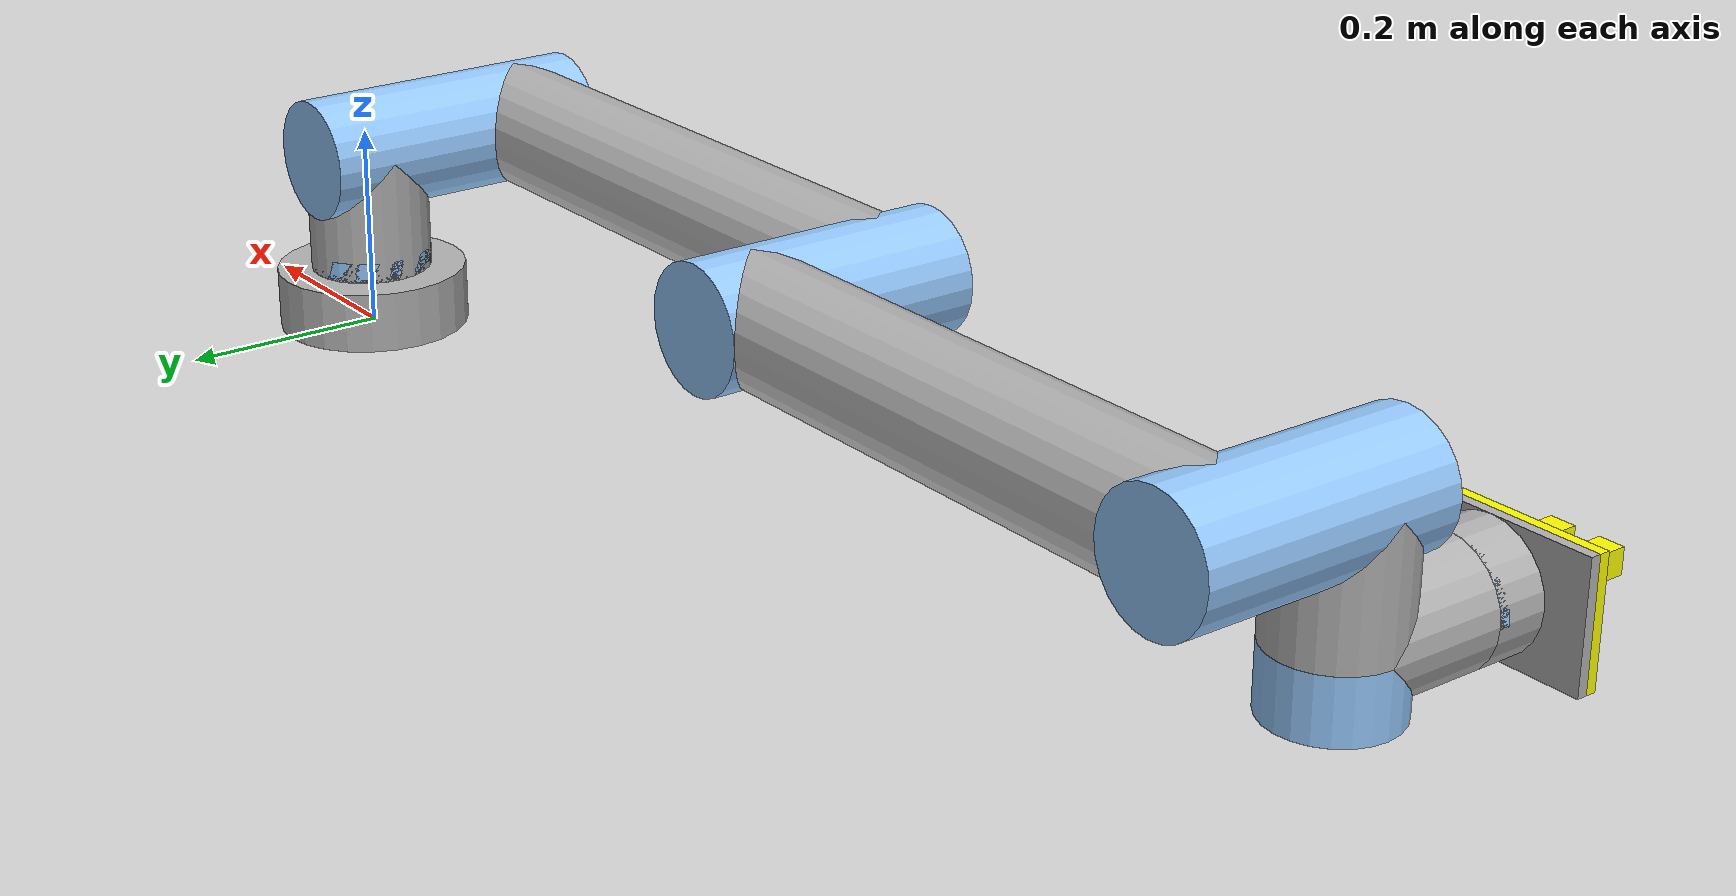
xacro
<?xml version="1.0"?>
<robot xmlns:xacro="http://www.ros.org/wiki/xacro" name="ur10e">
    <xacro:arg name="initial_positions_file" default="initial_positions.yaml" />

    <!-- Import ur10e urdf file -->
    <xacro:include filename="$(find simplified_ur10e_description)/urdf/ur10e.urdf.xacro" />

    <!-- Import control_xacro -->
    <xacro:include filename="ur10e.ros2_control.xacro" />

    <xacro:ur10e_ros2_control name="FakeSystem" initial_positions_file="$(arg initial_positions_file)"/>

</robot>

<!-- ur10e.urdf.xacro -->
<!-- Make the namespace of the robot-->
<robot xmlns:xacro="http://www.ros.org/wiki/xacro" name="ur10e">

    <!--======================================define_parameter=======================================-->
        <!--Define constants-->
        <xacro:property name="d_2PI" value="6.283185307179586"/>
        <xacro:property name="d_PI" value="3.141592653589793"/>
        <xacro:property name="d_half_PI" value="1.5707963267948966"/>

        <!--Define Rviz colors-->
        <material name="LightBlue">
            <color rgba="0.589 0.793 1.0 1.0"/>
        </material>
        <material name="LightGrey">
            <color rgba="0.7 0.7 0.7 1.0"/>
        </material>
        <material name="Yellow">
            <color rgba="1.0 1.0 0.0 1.0"/>
        </material>

    <!--======================================ur10e_arm=======================================-->
    <!--== define ur10e_arm ==-->
    <xacro:macro name="ur10e_arm_defined" params="">
        <!--world link-->
        <link name="world"/>

        <joint name="world_joint" type="fixed">
            <origin xyz="0.0 0.0 0.0" rpy="0.0 0.0 0.0"/>
            <parent link="world"/>
            <child link="base_link"/>
        </joint>

        <!-- links: main serial chain -->
        <link name="base_link"/>

        <link name="base_link_inertia">
            <visual>
                <origin rpy="0 0 0" xyz="0 0 0.03"/>
                <geometry>
                    <cylinder radius="0.095" length="0.06"/>
                </geometry>
                <material name="LightGrey"/>
            </visual>
            <collision>
                <origin rpy="0 0 0" xyz="0 0 0.03"/>
                <geometry>
                    <cylinder radius="0.095" length="0.06"/>
                </geometry>
            </collision>
            <inertial>
                <mass value="4.0"/>
                <origin rpy="0 0 0" xyz="0 0 0"/>
                <inertia ixx="0.0061063308908" ixy="0.0" ixz="0.0" iyy="0.0061063308908" iyz="0.0" izz="0.01125"/>
            </inertial>
        </link>

        <link name="shoulder_link">
            <visual>
                <origin rpy="0 0 0" xyz="0 0 -0.06035"/>
                <geometry>
                    <cylinder radius="0.06035" length="0.1207"/>
                </geometry>
                <material name="LightGrey"/>
            </visual>
            <collision>
                <origin rpy="0 0 0" xyz="0 0 -0.06035"/>
                <geometry>
                    <cylinder radius="0.06035" length="0.1207"/>
                </geometry>
            </collision>
            <inertial>
                <mass value="7.778"/>
                <origin rpy="0 0 0" xyz="0 0 0"/>
                <inertia ixx="0.03147431257693659" ixy="0.0" ixz="0.0" iyy="0.03147431257693659" iyz="0.0" izz="0.021875624999999996"/>
            </inertial>
        </link>

        <link name="upper_arm_link">
            <visual>
                <origin rpy="0 -${d_half_PI} 0" xyz="-0.30635 0 0.175"/>
                <geometry>
                    <cylinder radius="0.06035" length="0.6127"/>
                </geometry>
                <material name="LightGrey"/>
            </visual>
            <collision>
                <origin rpy="0 -${d_half_PI} 0" xyz="-0.30635 0 0.175"/>
                <geometry>
                    <cylinder radius="0.06035" length="0.6127"/>
                </geometry>
            </collision>
            <inertial>
                <mass value="12.93"/>
                <origin rpy="0 ${d_half_PI} 0" xyz="-0.306 0.0 0.175"/>
                <inertia ixx="0.42175380379841093" ixy="0.0" ixz="0.0" iyy="0.42175380379841093" iyz="0.0" izz="0.03636562499999999"/>
            </inertial>
        </link>

        <link name="forearm_link">
            <visual>
                <origin rpy="0 -${d_half_PI} 0" xyz="-0.285775 0 0.0393"/>
                <geometry>
                    <cylinder radius="0.06035" length="0.57155"/>
                </geometry>
                <material name="LightGrey"/>
            </visual>
            <collision>
                <origin rpy="0 -${d_half_PI} 0" xyz="-0.285775 0 0.0393"/>
                <geometry>
                    <cylinder radius="0.06035" length="0.57155"/>
                </geometry>
            </collision>
            <inertial>
                <mass value="3.87"/>
                <origin rpy="0 ${d_half_PI} 0" xyz="-0.285775 0.0 0.0393"/>
                <inertia ixx="0.11079302548902206" ixy="0.0" ixz="0.0" iyy="0.11079302548902206" iyz="0.0" izz="0.010884375"/>
            </inertial>
        </link>

        <link name="wrist_1_link">
            <visual>
                <origin rpy="${d_half_PI} 0 0" xyz="0 -0.059925 0"/>
                <geometry>
                    <cylinder radius="0.06035" length="0.11985"/>
                </geometry>
                <material name="LightGrey"/>
            </visual>
            <collision>
                <origin rpy="${d_half_PI} 0 0" xyz="0 -0.059925 0"/>
                <geometry>
                    <cylinder radius="0.06035" length="0.11985"/>
                </geometry>
            </collision>
            <inertial>
                <mass value="1.96"/>
                <origin rpy="0 0 0" xyz="0 0 0"/>
                <inertia ixx="0.005108247956699999" ixy="0.0" ixz="0.0" iyy="0.005108247956699999" iyz="0.0" izz="0.005512499999999999"/>
            </inertial>
        </link>

        <link name="wrist_2_link">
            <visual>
                <origin rpy="-${d_half_PI} 0 0" xyz="0 0.058275 0"/>
                <geometry>
                    <cylinder radius="0.06035" length="0.11655"/>
                </geometry>
                <material name="LightGrey"/>
            </visual>
            <collision>
                <origin rpy="-${d_half_PI} 0 0" xyz="0 0.058275 0"/>
                <geometry>
                    <cylinder radius="0.06035" length="0.11655"/>
                </geometry>
            </collision>
            <inertial>
                <mass value="1.96"/>
                <origin rpy="0 0 0" xyz="0 0 0"/>
                <inertia ixx="0.005108247956699999" ixy="0.0" ixz="0.0" iyy="0.005108247956699999" iyz="0.0" izz="0.005512499999999999"/>
            </inertial>
        </link>

        <link name="wrist_3_link">
            <visual>
                <origin rpy="0 0 0" xyz="0 0 0.025"/>
                <geometry>
                    <cylinder radius="0.06035" length="0.05"/>
                </geometry>
                <material name="LightGrey"/>
            </visual>
            <collision>
                <origin rpy="0 0 0" xyz="0 0 0.025"/>
                <geometry>
                    <cylinder radius="0.06035" length="0.05"/>
                </geometry>
            </collision>
            <inertial>
                <mass value="0.202"/>
                <origin rpy="0 0 0" xyz="0.0 0.0 -0.025"/>
                <inertia ixx="0.00014434577559500002" ixy="0.0" ixz="0.0" iyy="0.00014434577559500002" iyz="0.0" izz="0.00020452500000000002"/>
            </inertial>
        </link>

        <link name="flange_base">
            <visual>
                <origin xyz="0.0 0.0 0.005" rpy="0.0 0.0 0.0"/>
                <geometry>
                    <box size="0.1207 0.2 0.01"/>
                </geometry>
                <material name="LightGrey"/>
            </visual>
            <collision>
                <origin xyz="0.0 0.0 0.005" rpy="0.0 0.0 0.0"/>
                <geometry>
                    <box size="0.1207 0.2 0.01"/>
                </geometry>
            </collision>
            <inertial>
                <origin xyz="0 0 0.005" rpy="0 0 0"/>
                <mass value="0.001"/>
                <inertia ixx="1e-12" ixy="0.0" ixz="0.0" iyy="1e-12" iyz="0.0" izz="1e-12"/>
            </inertial>
        </link>

        <!-- joints: main serial chain -->
        <joint name="base_link-base_link_inertia" type="fixed">
            <parent link="base_link"/>
            <child link="base_link_inertia"/>
            <origin rpy="0 0 0" xyz="0 0 0"/>
        </joint>

        <joint name="shoulder_pan_joint" type="revolute">
            <parent link="base_link_inertia"/>
            <child link="shoulder_link"/>
            <origin rpy="0 0 0" xyz="0 0 0.1807"/>
            <axis xyz="0 0 1"/>
            <limit effort="330.0" lower="-${d_2PI}" upper="${d_2PI}" velocity="2.0943951023931953"/>
            <dynamics damping="0" friction="0"/>
        </joint>

        <joint name="shoulder_lift_joint" type="revolute">
            <parent link="shoulder_link"/>
            <child link="upper_arm_link"/>
            <origin rpy="1.570796327 0 0" xyz="0 0 0"/>
            <axis xyz="0 0 1"/>
            <limit effort="330.0" lower="-${d_2PI}" upper="${d_2PI}" velocity="2.0943951023931953"/>
            <dynamics damping="0" friction="0"/>
        </joint>

        <joint name="elbow_joint" type="revolute">
            <parent link="upper_arm_link"/>
            <child link="forearm_link"/>
            <origin rpy="0 0 0" xyz="-0.6127 0 0"/>
            <axis xyz="0 0 1"/>
            <limit effort="150.0" lower="-${d_PI}" upper="${d_PI}" velocity="${d_PI}"/>
            <dynamics damping="0" friction="0"/>
        </joint>

        <joint name="wrist_1_joint" type="revolute">
            <parent link="forearm_link"/>
            <child link="wrist_1_link"/>
            <origin rpy="0 0 0" xyz="-0.57155 0 0.17415"/>
            <axis xyz="0 0 1"/>
            <limit effort="56.0" lower="-${d_2PI}" upper="${d_2PI}" velocity="${d_PI}"/>
            <dynamics damping="0" friction="0"/>
        </joint>

        <joint name="wrist_2_joint" type="revolute">
            <parent link="wrist_1_link"/>
            <child link="wrist_2_link"/>
            <origin rpy="1.570796327 0 0" xyz="0 -0.11985 -2.458164590756244e-11"/>
            <axis xyz="0 0 1"/>
            <limit effort="56.0" lower="-${d_2PI}" upper="${d_2PI}" velocity="${d_PI}"/>
            <dynamics damping="0" friction="0"/>
        </joint>

        <joint name="wrist_3_joint" type="revolute">
            <parent link="wrist_2_link"/>
            <child link="wrist_3_link"/>
            <origin rpy="${d_half_PI} ${d_PI} ${d_PI}" xyz="0 0.11655 -2.390480459346185e-11"/>
            <axis xyz="0 0 1"/>
            <limit effort="56.0" lower="-${d_2PI}" upper="${d_2PI}" velocity="${d_PI}"/>
            <dynamics damping="0" friction="0"/>
        </joint>

        <joint name="wrist_3-flange_base" type="fixed">
            <parent link="wrist_3_link"/>
            <child link="flange_base"/>
            <origin rpy="0 0 ${d_half_PI}" xyz="0 0 0.05"/>
        </joint>

        <!-- links: plus serial chain ：links without mass, just for visualization -->
        <link name="shoulder_link_plus">
            <visual>
                <origin rpy="0 0 0" xyz="0 0 -0.1107"/>
                <geometry>
                    <cylinder radius="0.06035" length="0.02"/>
                </geometry>
                <material name="LightBlue"/>
            </visual>
            <collision>
                <origin rpy="0 0 0" xyz="0 0 -0.1107"/>
                <geometry>
                    <cylinder radius="0.06035" length="0.02"/>
                </geometry>
            </collision>
            <inertial>
                <mass value="0.001"/>
                <origin rpy="0 0 0" xyz="0 0 -0.1107"/>
                <inertia ixx="1e-12" ixy="0.0" ixz="0.0" iyy="1e-12" iyz="0.0" izz="1e-12"/>
            </inertial>
        </link>

        <link name="upper_arm_link_plus">
            <visual>
                <origin rpy="0 0 0" xyz="0 0 0.0875"/>
                <geometry>
                    <cylinder radius="0.06035" length="0.2957"/>
                </geometry>
                <material name="LightBlue"/>
            </visual>
            <collision>
                <origin rpy="0 0 0" xyz="0 0 0.0875"/>
                <geometry>
                    <cylinder radius="0.06035" length="0.2957"/>
                </geometry>
            </collision>
            <inertial>
                <mass value="0.001"/>
                <origin rpy="0 0 0" xyz="0 0 0.0875"/>
                <inertia ixx="1e-12" ixy="0.0" ixz="0.0" iyy="1e-12" iyz="0.0" izz="1e-12"/>
            </inertial>
        </link>

        <link name="forearm_link_plus">
            <visual>
                <origin rpy="0 0 0" xyz="0 0 0.10715"/>
                <geometry>
                    <cylinder radius="0.06035" length="0.2564"/>
                </geometry>
                <material name="LightBlue"/>
            </visual>
            <collision>
                <origin rpy="0 0 0" xyz="0 0 0.10715"/>
                <geometry>
                    <cylinder radius="0.06035" length="0.2564"/>
                </geometry>
            </collision>
            <inertial>
                <mass value="0.001"/>
                <origin rpy="0 0 0" xyz="0 0 0.10715"/>
                <inertia ixx="1e-12" ixy="0.0" ixz="0.0" iyy="1e-12" iyz="0.0" izz="1e-12"/>
            </inertial>
        </link>

        <link name="wrist_1_link_plus">
            <visual>
                <origin rpy="0 0 0" xyz="0 0 -0.067425"/>
                <geometry>
                    <cylinder radius="0.06035" length="0.25555"/>
                </geometry>
                <material name="LightBlue"/>
            </visual>
            <collision>
                <origin rpy="0 0 0" xyz="0 0 -0.067425"/>
                <geometry>
                    <cylinder radius="0.06035" length="0.25555"/>
                </geometry>
            </collision>
            <inertial>
                <mass value="0.001"/>
                <origin rpy="0 0 0" xyz="0 0 -0.067425"/>
                <inertia ixx="1e-12" ixy="0.0" ixz="0.0" iyy="1e-12" iyz="0.0" izz="1e-12"/>
            </inertial>
        </link>

        <link name="wrist_2_link_plus">
            <visual>
                <origin rpy="0 0 0" xyz="0 0 0.030175"/>
                <geometry>
                    <cylinder radius="0.06035" length="0.06035"/>
                </geometry>
                <material name="LightBlue"/>
            </visual>
            <collision>
                <origin rpy="0 0 0" xyz="0 0 0.030175"/>
                <geometry>
                    <cylinder radius="0.06035" length="0.06035"/>
                </geometry>
            </collision>
            <inertial>
                <mass value="0.001"/>
                <origin rpy="0 0 0" xyz="0 0 0.030175"/>
                <inertia ixx="1e-12" ixy="0.0" ixz="0.0" iyy="1e-12" iyz="0.0" izz="1e-12"/>
            </inertial>
        </link>

        <link name="wrist_3_link_plus">
            <visual>
                <origin rpy="0 0 0" xyz="0 0 0.005"/>
                <geometry>
                    <cylinder radius="0.06035" length="0.01"/>
                </geometry>
                <material name="LightBlue"/>
            </visual>
            <collision>
                <origin rpy="0 0 0" xyz="0 0 0.005"/>
                <geometry>
                    <cylinder radius="0.06035" length="0.01"/>
                </geometry>
            </collision>
            <inertial>
                <mass value="0.001"/>
                <origin rpy="0 0 0" xyz="0 0 0.005"/>
                <inertia ixx="1e-12" ixy="0.0" ixz="0.0" iyy="1e-12" iyz="0.0" izz="1e-12"/>
            </inertial>
        </link>

        <!-- joints: plus serial chain -->
        <joint name="shoulder_pan_joint_plus" type="fixed">
            <parent link="base_link_inertia"/>
            <child link="shoulder_link_plus"/>
            <origin rpy="0 0 0" xyz="0 0 0.1807"/>
        </joint>

        <joint name="shoulder_lift_joint_plus" type="fixed">
            <parent link="shoulder_link"/>
            <child link="upper_arm_link_plus"/>
            <origin rpy="1.570796327 0 0" xyz="0 0 0"/>
        </joint>

        <joint name="elbow_joint_plus" type="fixed">
            <parent link="upper_arm_link"/>
            <child link="forearm_link_plus"/>
            <origin rpy="0 0 0" xyz="-0.6127 0 0"/><dynamics damping="0" friction="0"/>
        </joint>

        <joint name="wrist_1_joint_plus" type="fixed">
            <parent link="forearm_link"/>
            <child link="wrist_1_link_plus"/>
            <origin rpy="0 0 0" xyz="-0.57155 0 0.17415"/>
        </joint>

        <joint name="wrist_2_joint_plus" type="fixed">
            <parent link="wrist_1_link"/>
            <child link="wrist_2_link_plus"/>
            <origin rpy="1.570796327 0 0" xyz="0 -0.11985 -2.458164590756244e-11"/>
        </joint>

        <joint name="wrist_3_joint_plus" type="fixed">
            <parent link="wrist_2_link"/>
            <child link="wrist_3_link_plus"/>
            <origin rpy="${d_half_PI} ${d_PI} ${d_PI}" xyz="0 0.11655 -2.390480459346185e-11"/>
        </joint>
    </xacro:macro>

    <!--== load ur10e_arm ==-->
    <xacro:ur10e_arm_defined/>

    <!--======================================custom_grip=======================================-->
    <!--== define custom_grip ==-->
    <xacro:macro name="custom_grip_defined" params="">
        <!-- parameter defined -->
        <xacro:property name="mass_flange" value="0.1" />
        <xacro:property name="mass_gripper_link" value="0.025" />

        <!-- custom_grip defined -->
        <joint name="flange_base-flange" type="fixed">
            <parent link="flange_base"/>
            <child link="flange"/>
            <origin rpy="0 0 0" xyz="0 0 0.0"/>
        </joint>

        <link name="flange">
            <visual>
                <origin xyz="0.0 0.0 0.015" rpy="0.0 0.0 0.0"/>
                <geometry>
                    <box size="0.1207 0.2 0.01"/>
                </geometry>
                <material name="Yellow"/>
            </visual>
            <collision>
                <origin xyz="0.0 0.0 0.015" rpy="0.0 0.0 0.0"/>
                <geometry>
                    <box size="0.1207 0.2 0.01"/>
                </geometry>
            </collision>
            <inertial>
                <origin xyz="0 0 0.01" rpy="0 0 0"/>
                <mass value="${mass_flange}"/>
                <inertia
                    ixx="${mass_flange / 12.0 * (0.02*0.02 + 0.2*0.2)}" ixy="0.0" ixz="0.0"
                    iyy="${mass_flange / 12.0 * (0.02*0.02 + 0.1207*0.1207)}" iyz="0.0"
                    izz="${mass_flange / 12.0 * (0.1207*0.1207 + 0.2*0.2)}" />
            </inertial>
        </link>

        <joint name="gripper_joint_1" type="prismatic">
            <origin xyz="0.0 0.025 0.02" rpy="-${d_half_PI} 0.0 0.0"/>
            <parent link="flange"/>
            <child link="gripper_link_1"/>
            <axis xyz="0 0 1"/>
            <limit lower="0.0" upper="0.04" effort="100.0" velocity="0.5"/>
        </joint>

        <link name="gripper_link_1">
            <visual>
                <origin xyz="0.0 -0.05 0.0" rpy="${d_half_PI} 0.0 0.0"/>
                <geometry>
                    <box size="0.025 0.025 0.1"/>
                </geometry>
                <material name="Yellow"/>
            </visual>
            <collision>
                <origin xyz="0.0 -0.05 0.0" rpy="${d_half_PI} 0.0 0.0"/>
                <geometry>
                    <box size="0.025 0.025 0.1"/>
                </geometry>
            </collision>
            <inertial>
                <!-- To do: chech the compatibility of origin rpy and inertia matrix-->
                <origin xyz="0.0 -0.05 0.0" rpy="${d_half_PI} 0.0 0.0"/>
                <mass value="${mass_gripper_link}"/>
                <inertia
                    ixx="${mass_gripper_link / 12.0 * (0.025*0.025 + 0.1*0.1)}" ixy="0.0" ixz="0.0"
                    iyy="${mass_gripper_link / 12.0 * (0.025*0.025 + 0.025*0.025)}" iyz="0.0"
                    izz="${mass_gripper_link / 12.0 * (0.025*0.025 + 0.1*0.1)}" />
            </inertial>
        </link>

        <joint name="gripper_joint_2" type="prismatic">
            <origin xyz="0.0 -0.025 0.02" rpy="${d_half_PI} 0.0 0.0"/>
            <parent link="flange"/>
            <child link="gripper_link_2"/>
            <axis xyz="0 0 1"/>
            <limit lower="0.0" upper="0.04" effort="100.0" velocity="0.5"/>
            <mimic joint="gripper_joint_1" multiplier="1.0" offset="0.0" />
        </joint>

        <link name="gripper_link_2">
            <visual>
                <origin xyz="0.0 0.05 0.0" rpy="${d_half_PI} 0.0 0.0"/>
                <geometry>
                    <box size="0.025 0.025 0.1"/>
                </geometry>
                <material name="Yellow"/>
            </visual>
            <collision>
                <origin xyz="0.0 0.05 0.0" rpy="${d_half_PI} 0.0 0.0"/>
                <geometry>
                    <box size="0.025 0.025 0.1"/>
                </geometry>
            </collision>
            <inertial>
                <!-- To do: chech the compatibility of origin rpy and inertia matrix-->
                <origin xyz="0.0 0.05 0.0" rpy="${d_half_PI} 0.0 0.0"/>
                <mass value="${mass_gripper_link}"/>
                <inertia
                    ixx="${mass_gripper_link / 12.0 * (0.025*0.025 + 0.1*0.1)}" ixy="0.0" ixz="0.0"
                    iyy="${mass_gripper_link / 12.0 * (0.025*0.025 + 0.025*0.025)}" iyz="0.0"
                    izz="${mass_gripper_link / 12.0 * (0.025*0.025 + 0.1*0.1)}" />
            </inertial>
        </link>
    </xacro:macro>

    <!--== load custom_grip ==-->
    <xacro:custom_grip_defined/>

    <!--======================================define_virutual_mimic_joint_to_solve_gazebo_moveit_bug=======================================-->
    <!--== define virtual mimic joint ==-->
    <xacro:macro name="virtual_mimic_joint_defined" params="">
        <link name="virtual_link_1"/>
        <joint name="gripper_joint_2_mimic" type="fixed">
            <parent link="world" />
            <child link="virtual_link_1" />
        </joint>
    </xacro:macro>

    <!--== load virtual mimic joint ==-->
    <xacro:virtual_mimic_joint_defined/>

</robot>
